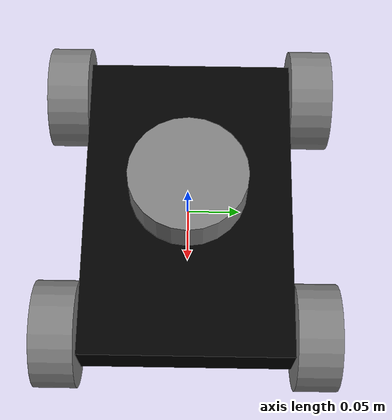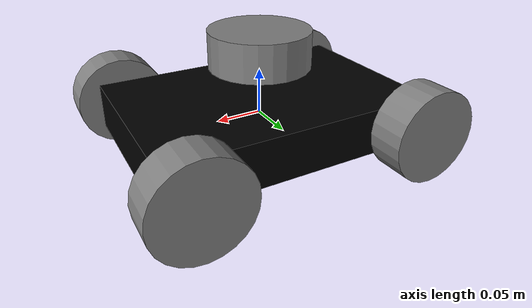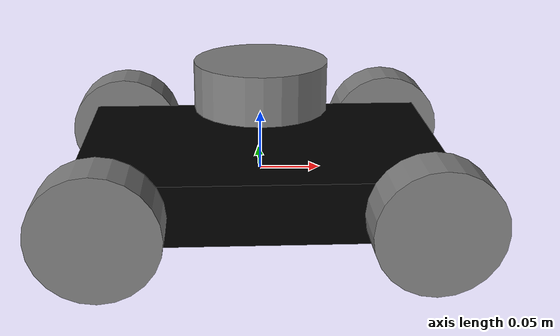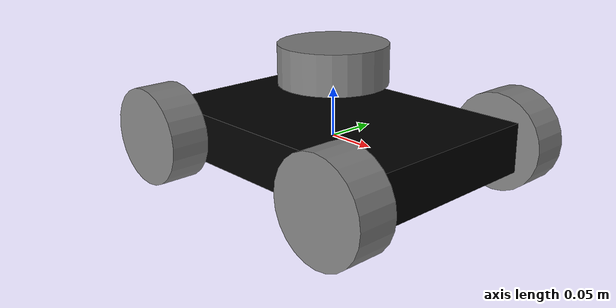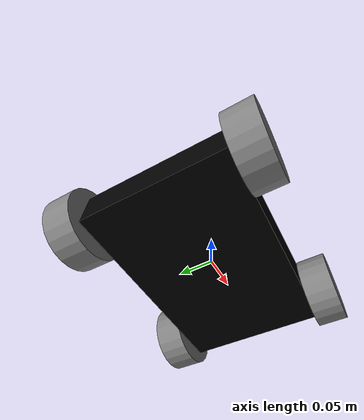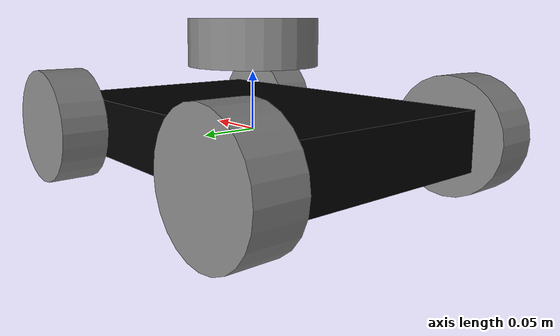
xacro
<?xml version="1.0"?>
<robot xmlns:xacro="http://www.ros.org/wiki/xacro"  name="robot">

    <xacro:include filename="robot_core.xacro"/>
    <xacro:include filename="ros2_control.xacro"/>
    <xacro:include filename="lidar.xacro"/>
</robot>

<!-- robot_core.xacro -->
<robot xmlns:xacro="http://www.ros.org/wiki/xacro">

    <xacro:include filename="inertial_macros.xacro"/>

    <!-- Colours for use in URDF declared below:-->
    <material name="white">
        <color rgba="1 1 1 1" />
    </material>

    <material name="black">
        <color rgba="0 0 0 1" />
    </material>

    <material name="yellow">
        <color rgba="1 1 0 1" />
    </material>

    <material name="grey">
        <color rgba="0.5 0.5 0.5 1" />
    </material>

    <material name="blue">
        <color rgba="0 0 1 1" />
    </material>

    <material name="green">
        <color rgba="0 1 0 1" />
    </material>

    <material name="red">
        <color rgba="1 0 0 1" />
    </material>

    <material name="orange">
        <color rgba="1 0.65 0 1" />
    </material>

    <!-- Links and Joints: -->
    <!-- URDF uses meters as units.-->

    <!-- Base Link: -->
    <link name="base_link">
        <origin xyz="0 0 0.035"/>
    </link>

    <!-- Chassis Link: -->
    <joint name="chassis_joint" type="fixed">
        <parent link="base_link"/>
        <child link="chassis_link"/>
        <origin xyz="-0.125 0 0.025"/>
    </joint>

    <link name="chassis_link">
        <visual>
            <origin xyz="0.125 0 -0.025"/>
            <geometry>
                <box size= "0.30 0.20 0.05"/>
            </geometry>
            <material name="black"/>
        </visual>

        <collision>
            <origin xyz="0.125 0 -0.025"/>
            <geometry>
                <box size= "0.30 0.20 0.05"/>
            </geometry>
        </collision>
        <xacro:inertial_box mass="0.5" x="0.30" y="0.20" z="0.05">
            <origin xyz="0.125 0 -0.025" rpy="0 0 0"/>
        </xacro:inertial_box>
    </link>
    <gazebo reference="chassis_link">
        <material>Gazebo/Black</material>
    </gazebo>

    <!-- Wheel Links: -->
    <!-- Left Wheel Links: -->

    <!-- REAR -->
    <joint name="left_wheel_rear_joint" type="continuous">
        <parent link="base_link"/>
        <child link="left_wheel_rear_link"/>
        <origin xyz="-0.125 0.106 0" rpy="-${pi/2} 0 0"/>
        <axis xyz="0 0 1"/>
    </joint>

    <link name="left_wheel_rear_link">
        <visual>
            <origin xyz="0 0 0.01425"/>
            <geometry>
                <cylinder radius="0.05" length="0.04"/>
            </geometry>
            <material name="grey"/>
        </visual>

        <collision>
            <origin xyz="0 0 0.01425"/>
            <geometry>
                <sphere radius="0.05" />
            </geometry>
        </collision>

        <xacro:inertial_cylinder mass="0.1" radius="0.05" length="0.04">
            <origin xyz="0 0 0.01425" rpy="0 0 0"/>
        </xacro:inertial_cylinder>
    </link>
    <gazebo reference="left_wheel_rear_link">
        <material>Gazebo/Grey</material>
    </gazebo>
    <!-- FWD -->
    <joint name="left_wheel_fwd_joint" type="continuous">
        <parent link="base_link"/>
        <child link="left_wheel_fwd_link"/>
        <origin xyz="0.125 0.106 0" rpy="-${pi/2} 0 0"/>
        <axis xyz="0 0 1"/>
    </joint>

    <link name="left_wheel_fwd_link">
        <visual>
            <origin xyz="0 0 0.01425"/>
            <geometry>
                <cylinder radius="0.05" length="0.04"/>
            </geometry>
            <material name="grey"/>
        </visual>

        <collision>
            <origin xyz="0 0 0.01425"/>
            <geometry>
                <sphere radius="0.05"/>
            </geometry>
        </collision>

        <xacro:inertial_cylinder mass="0.1" radius="0.05" length="0.04">
            <origin xyz="0 0 0.01425" rpy="0 0 0"/>
        </xacro:inertial_cylinder>
    </link>
    <gazebo reference="left_wheel_fwd_link">
        <material>Gazebo/Grey</material>
    </gazebo>
    <!-- Right Wheel Links: -->

    <!-- REAR -->
    <joint name="right_wheel_rear_joint" type="continuous">
        <parent link="base_link"/>
        <child link="right_wheel_rear_link"/>
        <origin xyz="-0.125 -0.106 0" rpy="${pi/2} 0 0"/>
        <axis xyz="0 0 -1"/>
    </joint>

    <link name="right_wheel_rear_link">
        <visual>
            <origin xyz="0 0 0.01425"/>
            <geometry>
                <cylinder radius="0.05" length="0.04"/>
            </geometry>
            <material name="grey"/>
        </visual>

        <collision>
            <origin xyz="0 0 0.01425"/>
            <geometry>
                <sphere radius="0.05"/>
            </geometry>
        </collision>

        <xacro:inertial_cylinder mass="0.1" radius="0.05" length="0.04">
            <origin xyz="0 0 0.01425" rpy="0 0 0"/>
        </xacro:inertial_cylinder>
    </link>
    <gazebo reference="right_wheel_rear_link">
        <material>Gazebo/Grey</material>
    </gazebo>

    <!-- FWD -->
    <joint name="right_wheel_fwd_joint" type="continuous">
        <parent link="base_link"/>
        <child link="right_wheel_fwd_link"/>
        <origin xyz="0.125 -0.106 0" rpy="${pi/2} 0 0"/>
        <axis xyz="0 0 -1"/>
    </joint>

    <link name="right_wheel_fwd_link">
        <visual>
            <origin xyz="0 0 0.01425"/>
            <geometry>
                <cylinder radius="0.05" length="0.04"/>
            </geometry>
            <material name="grey"/>
        </visual>

        <collision>
            <origin xyz="0 0 0.01425"/>
            <geometry>
                <sphere radius="0.05"/>
            </geometry>
        </collision>

        <xacro:inertial_cylinder mass="0.1" radius="0.05" length="0.04">
            <origin xyz="0 0 0.01425" rpy="0 0 0"/>
        </xacro:inertial_cylinder>
    </link>
    <gazebo reference="right_wheel_fwd_link">
        <material>Gazebo/Grey</material>
    </gazebo>
</robot>

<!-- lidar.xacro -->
<robot xmlns:xacro="http://www.ros.org/wiki/xacro">

    <joint name="laser_joint" type="fixed">
        <parent link="chassis_link"/>
        <child link="laser_frame"/>
        <origin xyz="0.125 0 0.02" rpy="0 0 0"/>
    </joint>

    <link name="laser_frame">
        <visual>
            <origin xyz="0 0 0.03" rpy="0 0 0"/>
            <geometry>
                <cylinder length="0.04" radius="0.055"/>
            </geometry>
            <material name="grey"/>
        </visual>
        <collision>
            <origin xyz="0 0 0" rpy="0 0 0"/>
            <geometry>
                <cylinder length="0.04" radius="0.055"/>
            </geometry>
        </collision>
        <xacro:inertial_cylinder mass="0.1" length="0.04" radius="0.055">
            <origin xyz="0 0 0" rpy="0 0 0"/>
        </xacro:inertial_cylinder>
    </link>

    <gazebo reference="laser_frame">
     <material>Gazebo/Grey</material>
        <sensor name="laser" type="ray">
            <pose>0 0 0.035 0 0 0</pose>
            <visualize>true</visualize>
            <update_rate>10</update_rate>
            <ray>
                <scan>
                    <horizontal>
                        <samples>360</samples>
                        <resolution>1</resolution>
                        <min_angle>-3.14</min_angle>
                        <max_angle>3.14</max_angle>
                    </horizontal>
                </scan>

                <range>
                    <min>0.3</min>
                    <max>12</max>
                    <resolution>0.01</resolution>
                </range>
            </ray>
            <plugin name="laser_controller" filename="libgazebo_ros_ray_sensor.so">
                <ros>
                    <namespace/>
                    <argument>~/out:=scan</argument>
                </ros>
                <output_type>sensor_msgs/LaserScan</output_type>
                <frame_name>laser_frame</frame_name>
            </plugin>
        </sensor>
    </gazebo>

</robot>
